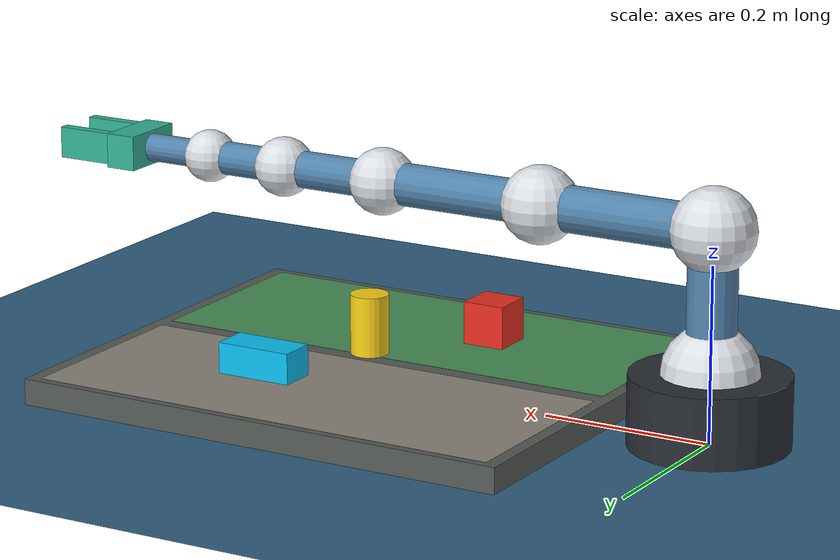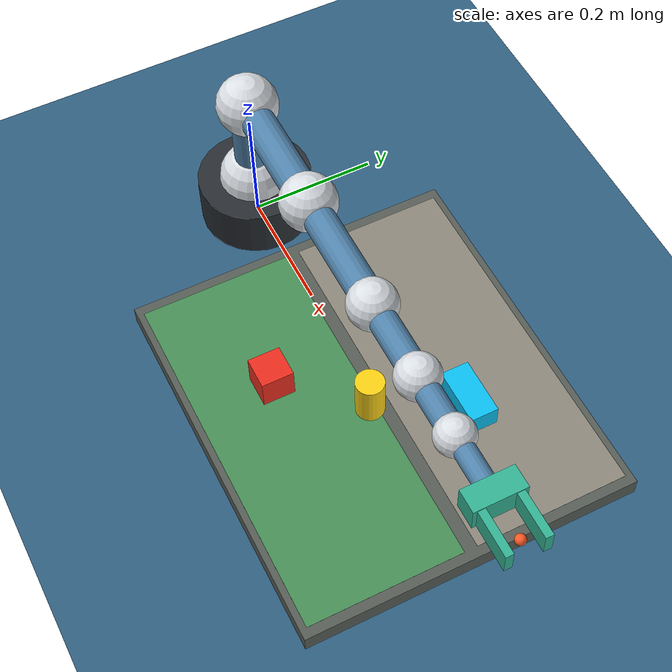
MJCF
<mujoco model="rebotarm_b601_simple">
  <compiler angle="radian" coordinate="local"/>
  <option timestep="0.002" gravity="0 0 -9.81"/>

  <visual>
    <headlight diffuse="0.6 0.6 0.6" ambient="0.25 0.25 0.25" specular="0.2 0.2 0.2"/>
    <rgba haze="0.15 0.20 0.25 1"/>
    <global azimuth="135" elevation="-25"/>
  </visual>

  <asset>
    <material name="base_mat" rgba="0.16 0.18 0.20 1"/>
    <material name="link_mat" rgba="0.32 0.52 0.68 1"/>
    <material name="joint_mat" rgba="0.86 0.88 0.90 1"/>
    <material name="gripper_mat" rgba="0.20 0.70 0.58 1"/>
    <texture name="floor_checker" type="2d" builtin="checker" rgb1="0.26 0.45 0.58" rgb2="0.12 0.30 0.43" width="512" height="512"/>
    <material name="floor_mat" texture="floor_checker" texrepeat="8 8" texuniform="true" reflectance="0.2"/>
    <material name="table_mat" rgba="0.34 0.36 0.34 1"/>
    <material name="pick_zone_mat" rgba="0.28 0.56 0.34 1"/>
    <material name="place_zone_mat" rgba="0.55 0.53 0.48 1"/>
    <material name="object_red_mat" rgba="0.92 0.18 0.12 1"/>
    <material name="object_blue_mat" rgba="0.04 0.75 0.95 1"/>
    <material name="object_yellow_mat" rgba="0.98 0.82 0.08 1"/>
    <material name="target_mat" rgba="1.00 0.55 0.12 0"/>
  </asset>

  <default>
    <joint damping="0.8" armature="0.01" limited="true"/>
    <geom contype="0" conaffinity="0" friction="0.8 0.1 0.1"/>
  </default>

  <worldbody>
    <light name="key_light" pos="0.4 -0.6 1.2" dir="-0.4 0.6 -1"/>
    <camera name="overhead_rgb" mode="fixed" pos="0.42 0 0.86" xyaxes="1 0 0 0 1 0" fovy="50"/>
    <geom name="floor" type="plane" size="1.0 1.0 0.02" material="floor_mat"/>

    <body name="task_table" pos="0.42 0 0.015">
      <geom name="task_table_top" type="box" size="0.30 0.26 0.015" material="table_mat" contype="1" conaffinity="1" friction="1.0 0.01 0.001"/>
      <geom name="task_pick_zone" type="box" pos="0 -0.13 0.0132" size="0.285 0.12 0.002" material="pick_zone_mat" contype="0" conaffinity="0"/>
      <geom name="task_place_zone" type="box" pos="0 0.13 0.0132" size="0.285 0.12 0.002" material="place_zone_mat" contype="0" conaffinity="0"/>
    </body>

    <body name="red_cube" pos="0.34 -0.13 0.055">
      <freejoint/>
      <geom type="box" size="0.025 0.025 0.025" material="object_red_mat" contype="1" conaffinity="1" mass="0.04" friction="1.1 0.01 0.001"/>
    </body>
    <body name="blue_block" pos="0.50 0.11 0.048">
      <freejoint/>
      <geom type="box" size="0.045 0.022 0.018" material="object_blue_mat" contype="1" conaffinity="1" mass="0.05" friction="1.1 0.01 0.001"/>
    </body>
    <body name="yellow_cylinder" pos="0.44 -0.02 0.065">
      <freejoint/>
      <geom type="cylinder" size="0.022 0.035" material="object_yellow_mat" contype="1" conaffinity="1" mass="0.04" friction="1.1 0.01 0.001"/>
    </body>
    <body name="ik_target" mocap="true" pos="0.34 0 0.20">
      <geom name="ik_target_sphere" type="sphere" size="0.025" material="target_mat" contype="0" conaffinity="0"/>
      <site name="ik_target_site" pos="0 0 0" size="0.035" rgba="1 0.55 0.12 0"/>
    </body>

    <body name="base" pos="0 0 0.04">
      <geom name="base_geom" type="cylinder" size="0.09 0.04" material="base_mat"/>

      <body name="link1" pos="0 0 0.04">
        <joint name="joint1" type="hinge" axis="0 0 1" range="-3.1416 3.1416"/>
        <geom name="joint1_geom" type="sphere" size="0.055" material="joint_mat"/>
        <geom name="link1_geom" type="capsule" fromto="0 0 0 0 0 0.16" size="0.028" material="link_mat"/>

        <body name="link2" pos="0 0 0.16">
          <joint name="joint2" type="hinge" axis="0 1 0" range="-2.6 2.6"/>
          <geom name="joint2_geom" type="sphere" size="0.048" material="joint_mat"/>
          <geom name="link2_geom" type="capsule" fromto="0 0 0 0.21 0 0" size="0.026" material="link_mat"/>

          <body name="link3" pos="0.21 0 0">
            <joint name="joint3" type="hinge" axis="0 1 0" range="-2.6 2.6"/>
            <geom name="joint3_geom" type="sphere" size="0.044" material="joint_mat"/>
            <geom name="link3_geom" type="capsule" fromto="0 0 0 0.20 0 0" size="0.024" material="link_mat"/>

            <body name="link4" pos="0.20 0 0">
              <joint name="joint4" type="hinge" axis="1 0 0" range="-3.1416 3.1416"/>
              <geom name="joint4_geom" type="sphere" size="0.038" material="joint_mat"/>
              <geom name="link4_geom" type="capsule" fromto="0 0 0 0.13 0 0" size="0.021" material="link_mat"/>

              <body name="link5" pos="0.13 0 0">
                <joint name="joint5" type="hinge" axis="0 1 0" range="-2.6 2.6"/>
                <geom name="joint5_geom" type="sphere" size="0.034" material="joint_mat"/>
                <geom name="link5_geom" type="capsule" fromto="0 0 0 0.10 0 0" size="0.019" material="link_mat"/>

                <body name="link6" pos="0.10 0 0">
                  <joint name="joint6" type="hinge" axis="1 0 0" range="-3.1416 3.1416"/>
                  <geom name="joint6_geom" type="sphere" size="0.030" material="joint_mat"/>
                  <geom name="wrist_geom" type="capsule" fromto="0 0 0 0.08 0 0" size="0.016" material="link_mat"/>

                  <body name="gripper" pos="0.08 0 0">
                    <geom name="gripper_base" type="box" pos="0.018 0 0" size="0.018 0.040 0.020" material="gripper_mat"/>
                    <body name="left_finger" pos="0.035 0.028 0">
                      <joint name="finger_left" type="hinge" axis="0 0 1" range="-1.8 1.8"/>
                      <geom name="left_finger_geom" type="box" pos="0.035 0 0" size="0.035 0.006 0.018" material="gripper_mat"/>
                    </body>
                    <body name="right_finger" pos="0.035 -0.028 0">
                      <geom name="right_finger_geom" type="box" pos="0.035 0 0" size="0.035 0.006 0.018" material="gripper_mat"/>
                    </body>
                    <site name="tcp" pos="0.085 0 0" size="0.008" rgba="1 0.35 0.15 1"/>
                  </body>
                </body>
              </body>
            </body>
          </body>
        </body>
      </body>
    </body>
  </worldbody>
</mujoco>
